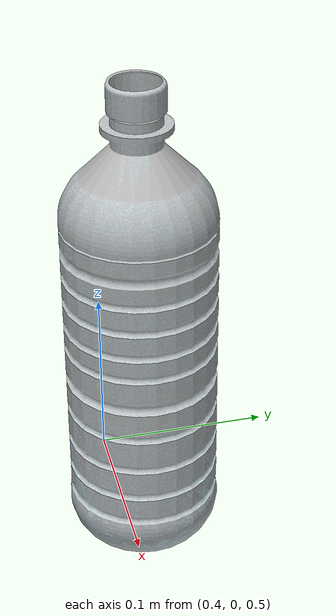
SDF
<?xml version="1.0" ?>
<sdf version="1.6">
  <model name="water_bottle2">
    <pose>0 0 0.5 0 0 0</pose>
    <static>true</static>
    <link name="link">
      <visual name="visual">
        <geometry>
          <mesh>
            <scale>1 1 1</scale>
            <uri>model://water_bottle2/model.dae</uri>
          </mesh>
        </geometry>
      </visual>
    </link>
  </model>
</sdf>
